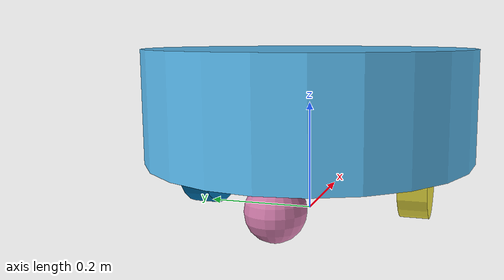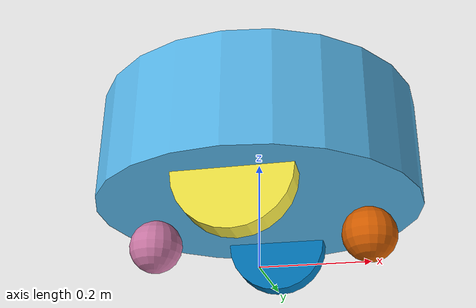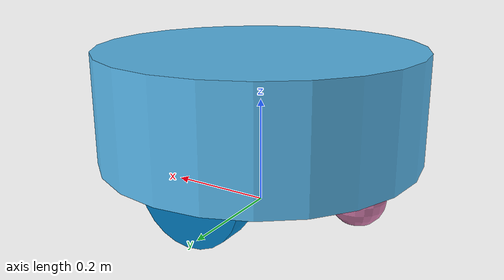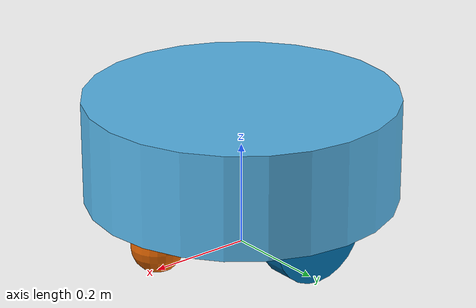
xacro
<?xml version="1.0"?>
<robot xmlns:xacro="http://www.ros.org/wiki/xacro">

    <link name="base_footprint"/>

    <link name="base_link">
        <visual>
            <geometry>
                <cylinder radius="0.3" length="0.2" />
            </geometry>
            <origin xyz="0 0 0.1" rpy="0 0 0" />
            <material name="" />
        </visual>
        <collision>
            <origin xyz="0 0 0.1" rpy="0 0 0" />
            <geometry>
                <cylinder radius="0.3" length="0.2" />
            </geometry>
    </collision>
    <inertial>
         <mass value="5"/>
         <inertia ixx="0.1292" ixy="0.0" ixz="0.0" iyy="0.1292" iyz="0.0" izz="0.225"/>
    </inertial>
    </link>

    <joint name="base_footprint_joint" type="fixed">
        <parent link="base_footprint" />
        <child link="base_link" />
        <origin xyz="0 0 0.1" rpy="0 0 0"/>
    </joint>

     <link name="base_scan">
        <visual>
            <geometry>
                <cylinder radius="0.29" length="0.02" />
            </geometry>
            <origin xyz="0 0 0" rpy="0 0 0" />
            <material name="" />
        </visual>
        <collision>
            <origin xyz="0 0 0.1" rpy="0 0 0" />
            <geometry>
                <cylinder radius="0.3" length="0.2" />
            </geometry>
    </collision>
    <inertial>
         <mass value="5"/>
         <inertia ixx="0.1292" ixy="0.0" ixz="0.0" iyy="0.1292" iyz="0.0" izz="0.225"/>
    </inertial>
     </link>

    <joint name="base_scan_joint" type="fixed">
        <parent link="base_link" />
        <child link="base_scan" />
        <origin xyz="0 0 0.15" rpy="0 0 0"/>
    </joint>

    <link name="right_wheel_link">
        <visual>
            <geometry>
                <cylinder radius="0.1" length="0.05" />
            </geometry>
            <origin xyz="0 0 0" rpy="1.57 0 0" />
            <material name="" />
        </visual>
        <collision>
            <geometry>
            <cylinder radius="0.1" length="0.05" />
            </geometry>
            <origin xyz="0 0 0" rpy="1.57 0 0" />
    </collision>
    <inertial>
         <mass value="1"/>
         <inertia ixx="0.0027" ixy="0.0" ixz="0.0" iyy="0.0027" iyz="0.0" izz="0.005"/>
    </inertial>
    </link>

    <joint name="right_wheel_joint" type="continuous">
        <parent link="base_link" />
        <child link="right_wheel_link" />
        <origin xyz="0 -0.2 0" rpy="0 0 0" />
        <axis xyz="0 1 0" />
    </joint>

    <link name="left_wheel_link">
        <visual>
            <geometry>
                <cylinder radius="0.1" length="0.05" />
            </geometry>
            <origin xyz="0 0 0" rpy="1.57 0 0" />
            <material name="" />
        </visual>
         <collision>
         <geometry>
             <cylinder radius="0.1" length="0.05" />
            </geometry>
            <origin xyz="0 0 0" rpy="1.57 0 0" />
    </collision>
    <inertial>
         <mass value="1"/>
         <inertia ixx="0.0027" ixy="0.0" ixz="0.0" iyy="0.0027" iyz="0.0" izz="0.005"/>
    </inertial>
    </link>

    <joint name="left_wheel_joint" type="continuous">
        <parent link="base_link" />
        <child link="left_wheel_link" />
        <origin xyz="0 0.2 0" rpy="0 0 0" />
        <axis xyz="0 1 0" />
    </joint>

    <link name="caster_wheel_1">
        <visual>
            <geometry>
                <sphere radius="0.05" />
            </geometry>
            <origin xyz="0 0 0" rpy="0 0 0" />
            <material name="" />
        </visual>
        <collision>
      <geometry>
                <sphere radius="0.05" />
            </geometry>
            <origin xyz="0 0 0" rpy="0 0 0" />
    </collision>
    <inertial>
         <mass value="0.5"/>
         <inertia ixx="0.0005" ixy="0.0" ixz="0.0" iyy="0.0005" iyz="0.0" izz="0.0005"/>
    </inertial>
    </link>

 <link name="caster_wheel_2">
        <visual>
            <geometry>
                <sphere radius="0.05" />
            </geometry>
            <origin xyz="0 0 0" rpy="0 0 0" />
            <material name="" />
        </visual>
        <collision>
      <geometry>
                <sphere radius="0.05" />
            </geometry>
            <origin xyz="0 0 0" rpy="0 0 0" />
    </collision>
    <inertial>
         <mass value="0.5"/>
         <inertia ixx="0.0005" ixy="0.0" ixz="0.0" iyy="0.0005" iyz="0.0" izz="0.0005"/>
    </inertial>
    </link>

    <joint name="caster_wheel_joint_1" type="fixed">
        <parent link="base_link" />
        <child link="caster_wheel_1" />
        <origin xyz="0.2 0 -0.05" rpy="0 0 0" />
    </joint>

    <joint name="caster_wheel_joint_2" type="fixed">
        <parent link="base_link" />
        <child link="caster_wheel_2" />
        <origin xyz="-0.2 0 -0.05" rpy="0 0 0" />
    </joint>
</robot>
